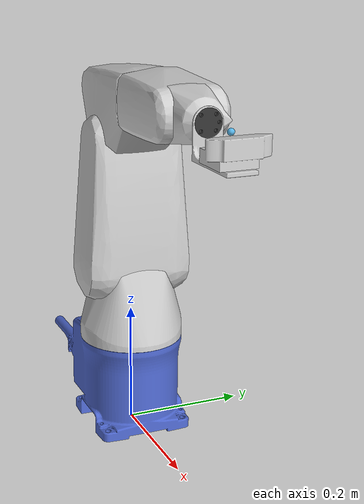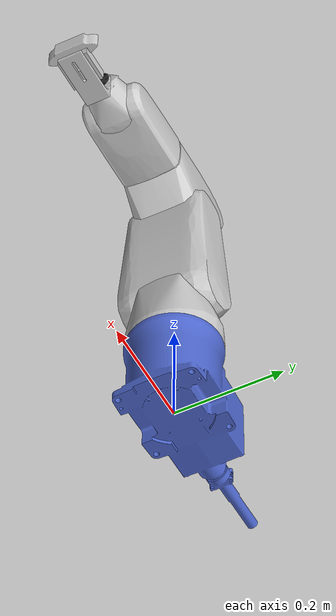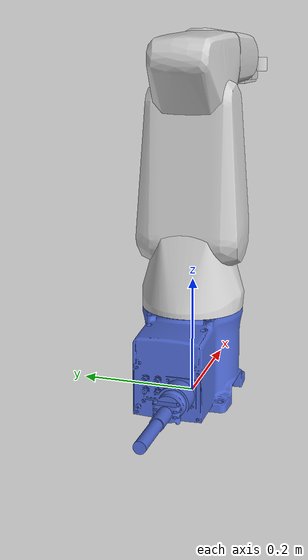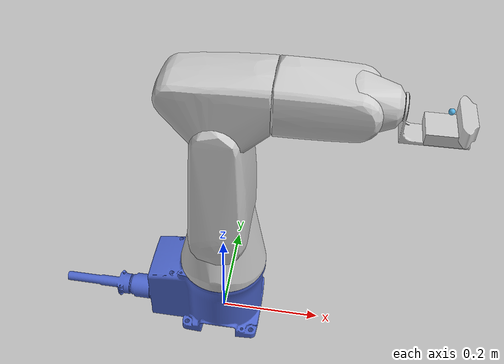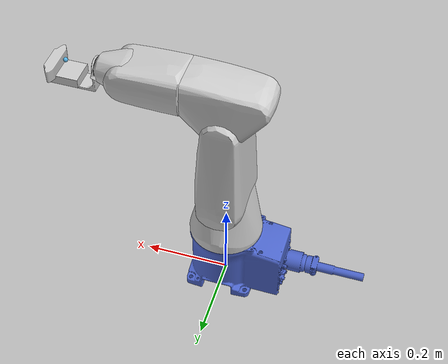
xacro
<?xml version="1.0"?>
<robot xmlns:xacro="http://www.ros.org/wiki/xacro" name="vp6242_with_c920">
  <xacro:macro name="mesh_origin">
    <origin rpy="-1.570796 3.141592 0" xyz="0 0 0"/>
  </xacro:macro>
  <xacro:property name="mesh_path" value="package://vp6242_description/robot" />
  <xacro:property name="mesh_scale" value="0.001 0.001 0.001" />
  <xacro:property name="default_joint_velocity" value="1.0" />
  <xacro:property name="default_joint_effort" value="1.0" /> <!-- As acceleration limit -->
  <xacro:property name="pi" value="3.1415926535897931" />
  <xacro:property name="pi2" value="pi / 2.0" />

  <link name="base_link">
    <visual>
	  <geometry>
	    <mesh filename="${mesh_path}/base.dae" scale="${mesh_scale}"/>
	  </geometry>
    <xacro:mesh_origin/>
	  <material name="base_link">
        <color rgba="0.3 0.4 0.8 1"/>
    </material>
    </visual>
    <collision>
	  	<geometry>
  	    <mesh filename="${mesh_path}/base_collision.dae" scale="${mesh_scale}"/>
	  	</geometry>
      <xacro:mesh_origin/>
    </collision>
  </link>

  <joint name="J1" type="revolute">
    <axis xyz="0 0 1"/>
    <limit effort="${default_joint_effort}" lower="${-(160.0/180.0) * pi}" upper="${(160.0/180.0) * pi}" velocity="${default_joint_velocity}"/>
    <origin rpy="0 0 0" xyz="0.0 0.0 0.155"/>
    <parent link="base_link"/>
    <child link="link0"/>
  </joint>

  <link name="link0">
    <visual>
      <geometry>
   	    <mesh filename="${mesh_path}/l0.dae" scale="${mesh_scale}"/>
      </geometry>
      <xacro:mesh_origin/>
      <material name="link">
        <color rgba="0.8 0.8 0.8 1"/>
      </material>
    </visual>
    <collision>
	  	<geometry>
        <mesh filename="${mesh_path}/l0_collision.dae" scale="${mesh_scale}"/>
	  	</geometry>
      <xacro:mesh_origin/>
    </collision>
  </link>

  <joint name="J2" type="revolute">
    <axis xyz="0 1 0"/>
    <limit effort="${default_joint_effort}" lower="${-(120.0/180.0) * pi}" upper="${(120.0/180.0) * pi}" velocity="${default_joint_velocity}"/>
    <origin rpy="0 0 0" xyz="0.0 0.0 0.125"/>
    <parent link="link0"/>
    <child link="link1"/>
  </joint>

  <link name="link1">
    <visual>
      <geometry>
   	    <mesh filename="${mesh_path}/l1.dae" scale="${mesh_scale}"/>
      </geometry>
      <xacro:mesh_origin/>
      <material name="link"/>
    </visual>
    <collision>
     	<geometry>
        <mesh filename="${mesh_path}/l1_collision.dae" scale="${mesh_scale}"/>
	  	</geometry>
      <xacro:mesh_origin/>
    </collision>
  </link>

 <joint name="J3" type="revolute">
    <axis xyz="0 1 0"/>
    <limit effort="${default_joint_effort}" lower="${(19.0/180.0) * pi}" upper="${(160.0/180.0) * pi}" velocity="${default_joint_velocity}"/>
    <origin rpy="0 0 0" xyz="0.0 0.0 0.210"/>
    <parent link="link1"/>
    <child link="link2"/>
  </joint>

  <link name="link2">
    <visual>
      <geometry>
   	    <mesh filename="${mesh_path}/l2.dae" scale="${mesh_scale}"/>
      </geometry>
      <origin rpy="-1.570796 1.570796 0" xyz="0 0 0"/>
	  <material name="link"/>
    </visual>
    <collision>
      <geometry>
        <mesh filename="${mesh_path}/l2_collision.dae" scale="${mesh_scale}"/>
	  	</geometry>
      <origin rpy="-1.570796 1.570796 0" xyz="0 0 0"/>
    </collision>
  </link>

  <joint name="J4" type="revolute">
    <axis xyz="0 0 1"/>
    <limit effort="${default_joint_effort}" lower="${-(160.0/180.0) * pi}" upper="${(160.0/180.0) * pi}" velocity="${default_joint_velocity}"/>
    <origin rpy="0 0 0" xyz="-0.075 0.0 0.0"/>
    <parent link="link2"/>
    <child link="link3"/>
  </joint>

  <link name="link3">
    <visual>
    <geometry>
      <mesh filename="${mesh_path}/l3.dae" scale="${mesh_scale}"/>
    </geometry>
    <origin rpy="0 1.570796 1.570796" xyz="0 0 0.085"/>
		<material name="link"/>
    </visual>
    <collision>
	  	<geometry>
        <mesh filename="${mesh_path}/l3_collision.dae" scale="${mesh_scale}"/>
	  	</geometry>
      <origin rpy="0 1.570796 1.570796" xyz="0 0 0.085"/>
    </collision>
  </link>

  <joint name="J5" type="revolute">
    <axis xyz="0 1 0"/>
    <limit effort="${default_joint_effort}" lower="${-(120.0/180.0) * pi}" upper="${(120.0/180.0) * pi}" velocity="${default_joint_velocity}"/>
    <origin rpy="0 0 0" xyz="0.0 0.0 0.210"/>
    <parent link="link3"/>
    <child link="link4"/>
  </joint>

  <link name="link4">
    <visual>
      <geometry>
  			<mesh filename="${mesh_path}/l4.dae" scale="${mesh_scale}"/>
      </geometry>
    <origin rpy="0 1.570796 1.570796" xyz="0 0 0.0"/>
	  <material name="link"/>
    </visual>
    <collision>
	  	<geometry>
        <mesh filename="${mesh_path}/l4_collision.dae" scale="${mesh_scale}"/>
	  	</geometry>
      <origin rpy="0 1.570796 1.570796" xyz="0 0 0.0"/>
    </collision>
  </link>

  <joint name="J6" type="revolute">
    <axis xyz="1 0 0"/>
    <limit effort="${default_joint_effort}" lower="${-(360/180.0) * pi}" upper="${(360/180.0) * pi}" velocity="${default_joint_velocity}"/>
    <origin rpy="0 -1.570796 0" xyz="0.0 0.0 0.07"/>
    <parent link="link4"/>
    <child link="link5"/>
  </joint>

  <link name="link5">
  <visual>
    <geometry>
      <cylinder length="0.01" radius="0.0205"/>
    </geometry>
    <origin rpy="0 -1.570796 0" xyz="0.0 0.0 0.0"/>
    <material name="plate">
      <color rgba="0.1 0.1 0.1 0.8"/>
    </material>
  </visual>
  </link>

  <joint name="wrist_to_plate" type="fixed">
    <axis xyz="1 0 0"/>
    <origin rpy="0 0 0" xyz="0 0 0"/>
    <parent link="link5"/>
    <child link="plate"/>
  </joint>

  <link name="plate">
    <visual>
      <geometry>
  			<mesh filename="${mesh_path}/small_camera_plate.dae" scale="${mesh_scale}"/>
      </geometry>
    <origin rpy="1.570796 0 1.570796" xyz="0 0 0"/>
	  <material name="link"/>
    </visual>
    <collision>
	  	<geometry>
        <mesh filename="${mesh_path}/small_camera_plate_collision.dae" scale="${mesh_scale}"/>
	  	</geometry>
      <origin rpy="1.570796 0 1.570796" xyz="0 0 0.0"/>
    </collision>
  </link>

  <joint name="plate_to_c920" type="fixed">
    <axis xyz="1 0 0"/>
    <origin rpy="0 0 0" xyz="0.07 0 -0.045"/>
    <parent link="plate"/>
    <child link="c920"/>
  </joint>

  <link name="c920">
    <visual>
      <geometry>
  			<mesh filename="${mesh_path}/logitech_c920.dae" scale="${mesh_scale}"/>
      </geometry>
    <origin rpy="1.570796 0 1.570796" xyz="0 0 0"/>
	  <material name="link"/>
    </visual>
    <collision>
	  	<geometry>
        <mesh filename="${mesh_path}/logitech_c920_collision.dae" scale="${mesh_scale}"/>
	  	</geometry>
      <origin rpy="1.570796 0 1.570796" xyz="0 0 0.0"/>
    </collision>
  </link>

  <link name="c920_rgb_frame">
   <visual>
      <origin rpy="0 0 0" xyz="0 0 0"/>
      <geometry>
        <sphere radius="0.005"/>
      </geometry>
    </visual>
  </link>

  <joint name="wrist_to_c920_rgb_frame" type="fixed">
    <axis xyz="1 0 0"/>
    <origin rpy="0 1.570796 0" xyz="0.07 0 0.0"/>
    <parent link="link5"/>
    <child link="c920_rgb_frame"/>
  </joint>

</robot>
